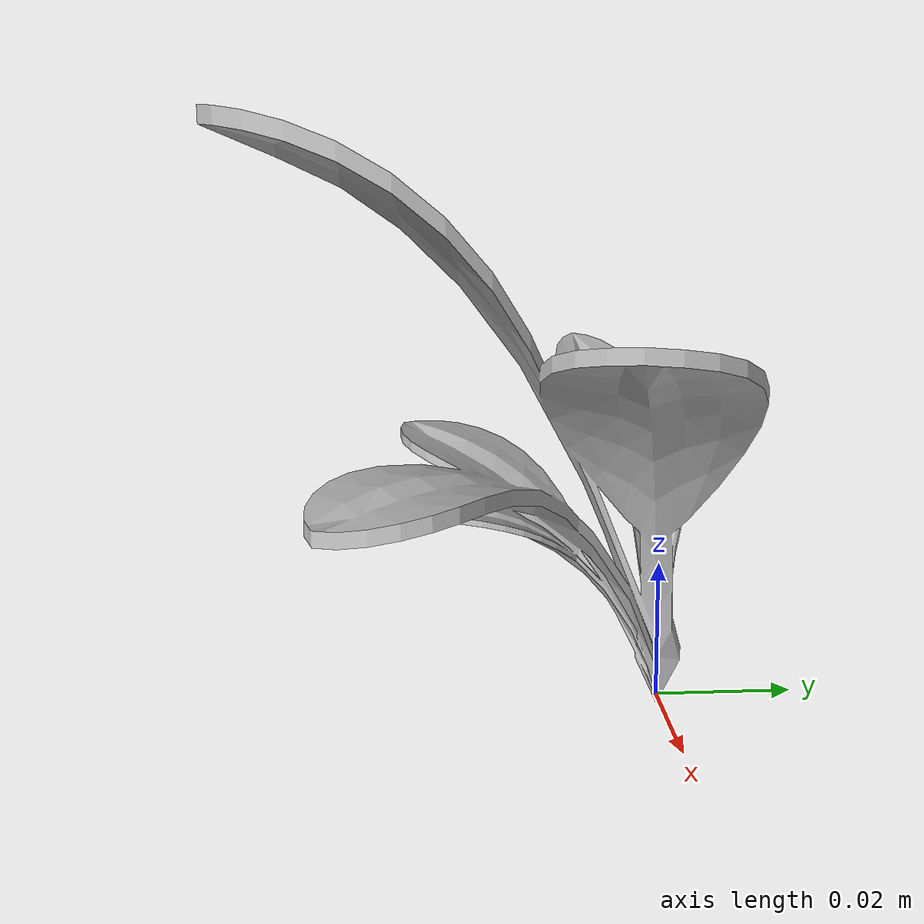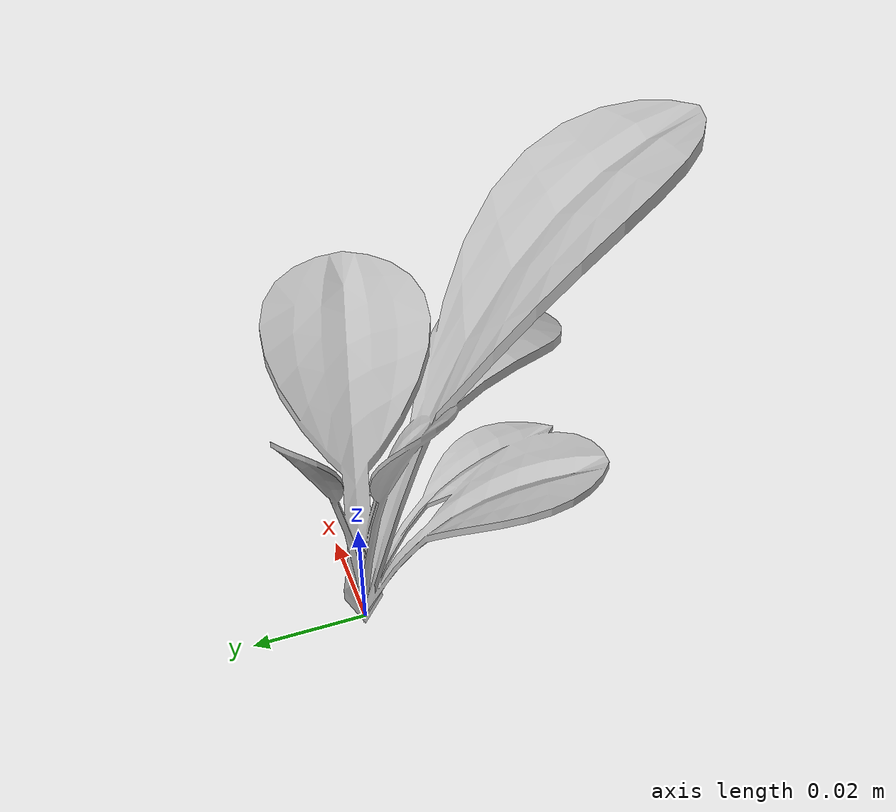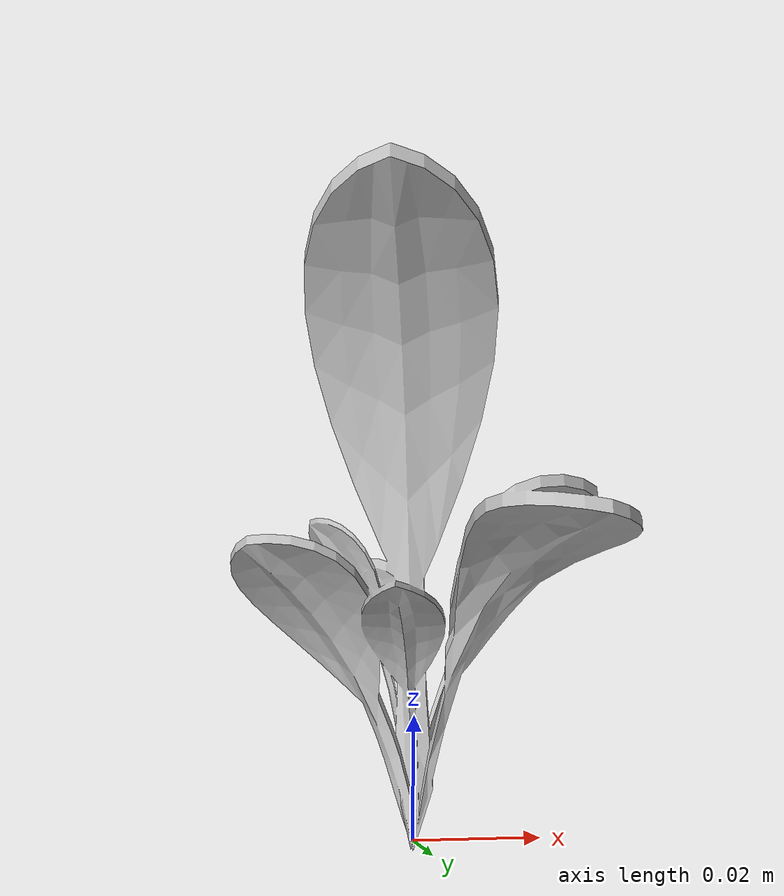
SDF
<sdf version="1.6">
  <model name="sugar_beet_60">
    <static>true</static>
    <link name="body">
      <visual name="visual">
        <geometry>
          <mesh>
            <uri>file:///sugar_beet_60/media/sugar_beet.dae</uri>
          </mesh>
        </geometry>
      </visual>
    </link>
  </model>
</sdf>
